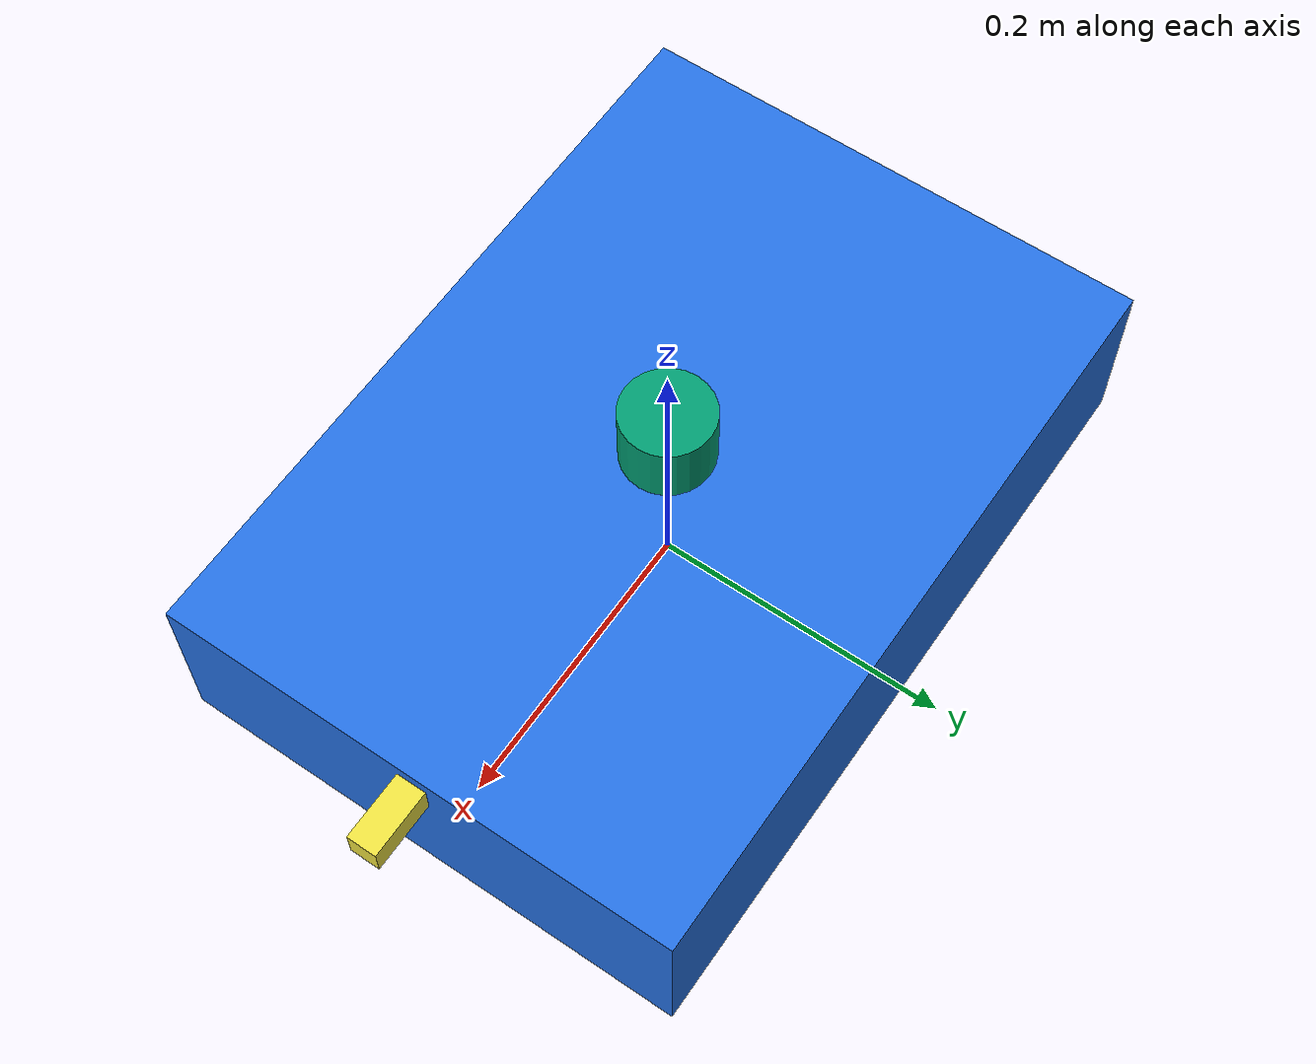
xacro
<?xml version="1.0"?>
<robot xmlns:xacro="http://www.ros.org/wiki/xacro" name="msp_robot">
  <!-- Minimal box robot with simulated camera, 2D lidar, and IMU (Gazebo Sim / ros_gz). -->

  <!-- Root link keeps base_link from being the KDL root (avoids inertia warning). -->
  <link name="world">
    <inertial>
      <mass value="1e-9"/>
      <inertia ixx="1e-12" ixy="0" ixz="0" iyy="1e-12" iyz="0" izz="1e-12"/>
    </inertial>
  </link>

  <joint name="world_to_base" type="fixed">
    <parent link="world"/>
    <child link="base_link"/>
    <origin xyz="0 0 0" rpy="0 0 0"/>
  </joint>

  <link name="base_link">
    <visual>
      <origin xyz="0 0 0.06" rpy="0 0 0"/>
      <geometry>
        <box size="0.5 0.35 0.12"/>
      </geometry>
      <material name="blue">
        <color rgba="0.15 0.45 0.9 1"/>
      </material>
    </visual>
    <collision>
      <origin xyz="0 0 0.06" rpy="0 0 0"/>
      <geometry>
        <box size="0.5 0.35 0.12"/>
      </geometry>
    </collision>
    <inertial>
      <origin xyz="0 0 0.06" rpy="0 0 0"/>
      <mass value="6.0"/>
      <inertia ixx="0.08" ixy="0" ixz="0" iyy="0.08" iyz="0" izz="0.08"/>
    </inertial>
  </link>

  <link name="lidar_link">
    <visual>
      <origin xyz="0 0 0" rpy="0 0 0"/>
      <geometry>
        <cylinder length="0.05" radius="0.03"/>
      </geometry>
    </visual>
    <collision>
      <origin xyz="0 0 0" rpy="0 0 0"/>
      <geometry>
        <cylinder length="0.05" radius="0.03"/>
      </geometry>
    </collision>
    <inertial>
      <origin xyz="0 0 0" rpy="0 0 0"/>
      <mass value="0.1"/>
      <inertia ixx="0.0001" ixy="0" ixz="0" iyy="0.0001" iyz="0" izz="0.0001"/>
    </inertial>
  </link>

  <joint name="lidar_joint" type="fixed">
    <parent link="base_link"/>
    <child link="lidar_link"/>
    <origin xyz="0 0 0.14" rpy="0 0 0"/>
  </joint>

  <link name="camera_link">
    <visual>
      <origin xyz="0 0 0" rpy="0 0 0"/>
      <geometry>
        <box size="0.05 0.02 0.02"/>
      </geometry>
    </visual>
    <collision>
      <origin xyz="0 0 0" rpy="0 0 0"/>
      <geometry>
        <box size="0.05 0.02 0.02"/>
      </geometry>
    </collision>
    <inertial>
      <origin xyz="0 0 0" rpy="0 0 0"/>
      <mass value="0.02"/>
      <inertia ixx="1e-5" ixy="0" ixz="0" iyy="1e-5" iyz="0" izz="1e-5"/>
    </inertial>
  </link>

  <joint name="camera_joint" type="fixed">
    <parent link="base_link"/>
    <child link="camera_link"/>
    <origin xyz="0.27 0 0.10" rpy="0 0 0"/>
  </joint>

  <!-- Gazebo Sim sensors: explicit gz topics for simple ros_gz_bridge mapping. -->
  <gazebo reference="base_link">
    <sensor name="imu_sensor" type="imu">
      <always_on>true</always_on>
      <update_rate>100</update_rate>
      <topic>/imu</topic>
    </sensor>
  </gazebo>

  <gazebo reference="lidar_link">
    <sensor name="lidar" type="gpu_lidar">
      <always_on>true</always_on>
      <update_rate>10</update_rate>
      <visualize>true</visualize>
      <topic>/scan</topic>
      <pose>0 0 0 0 0 0</pose>
      <lidar>
        <scan>
          <horizontal>
            <samples>360</samples>
            <resolution>1</resolution>
            <min_angle>-3.14159</min_angle>
            <max_angle>3.14159</max_angle>
          </horizontal>
        </scan>
        <range>
          <min>0.1</min>
          <max>20.0</max>
          <resolution>0.01</resolution>
        </range>
      </lidar>
    </sensor>
  </gazebo>

  <gazebo reference="camera_link">
    <sensor name="camera" type="camera">
      <always_on>true</always_on>
      <update_rate>30</update_rate>
      <visualize>true</visualize>
      <topic>/camera</topic>
      <pose>0 0 0 0 0 0</pose>
      <camera>
        <horizontal_fov>1.047</horizontal_fov>
        <image>
          <width>320</width>
          <height>240</height>
        </image>
        <clip>
          <near>0.1</near>
          <far>100</far>
        </clip>
      </camera>
    </sensor>
  </gazebo>
</robot>
